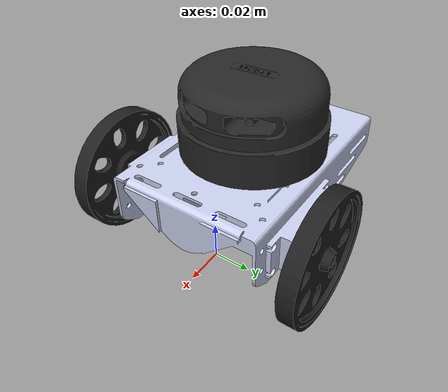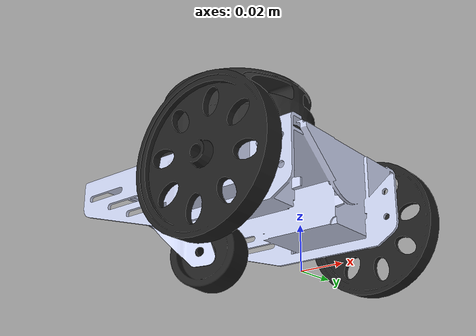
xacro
<?xml version="1.0"?>
<robot
  xmlns:xacro="http://www.ros.org/wiki/xacro"
  name="boe_robot">

  <!-- Các thông số chính của robot -->
  <xacro:property name="wheel_radius" value="0.03272"/>
  <xacro:property name="wheel_width" value="0.00975"/>
  <xacro:property name="wheel_separation" value="0.115"/>
  <xacro:property name="caster_wheel_radius" value="0.01805"/>
  <xacro:property name="caster_wheel_width" value="0.02135"/>

  <!-- Màu thân xe -->
  <material name="body_color">
    <color rgba="0.796 0.824 0.937 1.0"/>
  </material>

  <!-- Màu bánh xe -->
  <material name="wheel_color">
    <color rgba="0.12 0.12 0.12 1.0"/>
  </material>

  <!--
    base_footprint nằm trên mặt đất,
    ở gần tâm giữa hai bánh chủ động.
  -->
  <link name="base_footprint"/>

  <!--
    Dịch base_link so với tâm hai bánh:
    x = -0.03193 m
    y =  0.004294 m
    z =  0.03215 m
  -->
  <joint name="base_footprint_joint" type="fixed">
    <parent link="base_footprint"/>
    <child link="base_link"/>
    <origin
      xyz="-0.0319316266 0.0042939669 0.03215"
      rpy="0 0 0"/>
  </joint>

    <!-- Thân xe -->
  <link name="base_link">
    <!-- Hình dạng hiển thị -->
    <visual>
      <origin xyz="0 0 0" rpy="0 0 0"/>
      <geometry>
        <mesh
          filename="package://boe_robot_description/meshes/base_link.STL"/>
      </geometry>
      <material name="body_color"/>
    </visual>

    <!-- Hình dạng dùng để tính va chạm -->
    <collision>
      <origin
        xyz="-0.0018954 -0.0042940 0.0018238"
        rpy="0 0 0"/>
      <geometry>
        <box size="0.1209 0.1150 0.0335"/>
      </geometry>
    </collision>

    <!-- Khối lượng và mô-men quán tính -->
    <inertial>
      <origin
        xyz="0.0154452 -0.0042940 0.0038704"
        rpy="0 0 0"/>
      <mass value="0.0814944"/>
      <inertia
        ixx="2.7770132e-05"
        ixy="0.0"
        ixz="1.0575890e-06"
        iyy="4.2579467e-05"
        iyz="0.0"
        izz="6.3174700e-05"/>
    </inertial>
  </link>

  <!-- Bánh chủ động bên trái -->
  <link name="wheel_left_link">
    <visual>
      <origin
        xyz="0 0 0"
        rpy="1.5707963268 0 0"/>
      <geometry>
        <mesh filename="package://boe_robot_description/meshes/wheel_left_link.STL"/>
      </geometry>
      <material name="wheel_color"/>
    </visual>

    <collision>
      <origin
        xyz="0 0.002125 0"
        rpy="1.5707963268 0 0"/>
      <geometry>
        <cylinder
          radius="${wheel_radius}"
          length="${wheel_width}"/>
      </geometry>
    </collision>

    <inertial>
      <origin
        xyz="0 0.0014620 0"
        rpy="1.5707963268 0 0"/>
      <mass value="0.0130643"/>
      <inertia
        ixx="4.3289310e-06"
        ixy="0.0"
        ixz="0.0"
        iyy="4.3289308e-06"
        iyz="0.0"
        izz="8.5765717e-06"/>
    </inertial>
  </link>

  <joint name="wheel_left_joint" type="continuous">
    <parent link="base_link"/>
    <child link="wheel_left_link"/>
    <origin
      xyz="0.0329316266 0.0532060331 0.0005737626"
      rpy="0 0 0"/>
    <axis xyz="0 1 0"/>
    <limit effort="1.0" velocity="20.0"/>
  </joint>

  <!-- Bánh chủ động bên phải -->
  <link name="wheel_right_link">
    <visual>
      <origin
        xyz="0 0 0"
        rpy="-1.5707963268 0 0"/>
      <geometry>
        <mesh filename="package://boe_robot_description/meshes/wheel_right_link.STL"/>
      </geometry>
      <material name="wheel_color"/>
    </visual>

    <collision>
      <origin
        xyz="0 -0.002125 0"
        rpy="-1.5707963268 0 0"/>
      <geometry>
        <cylinder
          radius="${wheel_radius}"
          length="${wheel_width}"/>
      </geometry>
    </collision>

    <inertial>
      <origin
        xyz="0 -0.0014620 0"
        rpy="-1.5707963268 0 0"/>
      <mass value="0.0130643"/>
      <inertia
        ixx="4.3289310e-06"
        ixy="0.0"
        ixz="0.0"
        iyy="4.3289308e-06"
        iyz="0.0"
        izz="8.5765717e-06"/>
    </inertial>
  </link>

  <joint name="wheel_right_joint" type="continuous">
    <parent link="base_link"/>
    <child link="wheel_right_link"/>
    <origin
      xyz="0.0309316266 -0.0617939669 0.0005737626"
      rpy="0 0 0"/>
    <axis xyz="0 1 0"/>
    <limit effort="1.0" velocity="20.0"/>
  </joint>
  <!-- Cụm bánh caster                                       -->

  <!-- Đế caster gắn cố định với thân robot -->
  <link name="caster_base_link">
    <visual>
      <origin xyz="0 0 0" rpy="0 0 0"/>
      <geometry>
        <mesh
          filename="package://boe_robot_description/meshes/caster_base_link.STL"/>
      </geometry>
      <material name="body_color"/>
    </visual>

    <collision>
      <origin
        xyz="-0.0361715 0 -0.0059156"
        rpy="0 0 0"/>
      <geometry>
        <box size="0.02925 0.04230 0.00883"/>
      </geometry>
    </collision>

    <inertial>
      <origin
        xyz="-0.0361715 0 -0.0030658"
        rpy="0 0 0"/>
      <mass value="0.0030125"/>
      <inertia
        ixx="3.9104173e-07"
        ixy="0.0"
        ixz="0.0"
        iyy="2.0299201e-07"
        iyz="0.0"
        izz="5.8856957e-07"/>
    </inertial>
  </link>

  <joint name="caster_base_joint" type="fixed">
    <parent link="base_link"/>
    <child link="caster_base_link"/>
    <origin
      xyz="-0.0049954073 -0.0042939669 0.0185737626"
      rpy="0 0 0"/>
  </joint>

  <!-- Phần caster có thể tự xoay theo hướng chuyển động -->
  <link name="caster_rotation_link">
    <visual>
      <origin xyz="0 0 0" rpy="0 0 0"/>
      <geometry>
        <mesh
          filename="package://boe_robot_description/meshes/caster_rotation_link.STL"/>
      </geometry>
      <material name="body_color"/>
    </visual>

    <collision>
      <origin
        xyz="0.0075675 0.0003090 -0.0147200"
        rpy="0 0 0"/>
      <geometry>
        <box size="0.04273 0.02820 0.03036"/>
      </geometry>
    </collision>

    <inertial>
      <origin
        xyz="0.0080981 0.0017545 -0.0072399"
        rpy="0 0 0"/>
      <mass value="0.0011340"/>
      <inertia
        ixx="1.7627566e-07"
        ixy="-8.3344816e-09"
        ixz="3.7574602e-08"
        iyy="2.1288142e-07"
        iyz="8.1503549e-09"
        izz="2.2080115e-07"/>
    </inertial>
  </link>

  <!-- Khớp thụ động cho cả cụm caster đổi hướng quanh trục Z. -->
  <joint name="caster_rotation_joint" type="continuous">
    <parent link="caster_base_link"/>
    <child link="caster_rotation_link"/>
    <origin
      xyz="-0.0361714130 0 -0.0106540966"
      rpy="0 0 0"/>
    <axis xyz="0 0 1"/>
    <dynamics damping="0.02" friction="0.001"/>
    <limit effort="0.2" velocity="10.0"/>
  </joint>

  <!-- Bánh caster hiển thị; collision vật lý đơn giản nằm trong SDF. -->
  <link name="caster_wheel_link">
    <visual>
      <origin
        xyz="0 0 0"
        rpy="-1.5707963268 0 0"/>
      <geometry>
        <mesh
          filename="package://boe_robot_description/meshes/caster_wheel_link.STL"/>
      </geometry>
      <material name="wheel_color"/>
    </visual>

    <collision>
      <origin
        xyz="0 0 0"
        rpy="-1.5707963268 0 0"/>
      <geometry>
        <cylinder
          radius="${caster_wheel_radius}"
          length="${caster_wheel_width}"/>
      </geometry>
    </collision>

    <inertial>
      <origin
        xyz="-0.0000022 0.0000102 0"
        rpy="-1.5707963268 0 0"/>
      <mass value="0.0076789"/>
      <inertia
        ixx="8.3385020e-07"
        ixy="0.0"
        ixz="-1.2263852e-07"
        iyy="8.0727807e-07"
        iyz="0.0"
        izz="1.3732925e-06"/>
    </inertial>
  </link>

  <!-- Khớp thụ động cho bánh caster lăn quanh trục Y. -->
  <joint name="caster_wheel_joint" type="continuous">
    <parent link="caster_rotation_link"/>
    <child link="caster_wheel_link"/>
    <origin
      xyz="0.0179800159 0.0039088610 -0.0220196660"
      rpy="0 0 0"/>
    <axis xyz="0 1 0"/>
    <dynamics damping="0.005" friction="0.001"/>
    <limit effort="0.2" velocity="20.0"/>
  </joint>

  <!-- LiDAR 2D                                               -->

  <material name="lidar_color">
    <color rgba="0.15 0.15 0.15 1.0"/>
  </material>

  <!-- Phần thân của cảm biến LiDAR -->
  <link name="lidar_link">
    <visual>
      <origin xyz="0 0 0" rpy="0 0 0"/>
      <geometry>
        <mesh
          filename="package://boe_robot_description/meshes/lidar_link.STL"/>
      </geometry>
      <material name="lidar_color"/>
    </visual>

    <collision>
      <origin
        xyz="0.0044570 0.0002393 -0.0043482"
        rpy="0 0 0"/>
      <geometry>
        <cylinder radius="0.038" length="0.041"/>
      </geometry>
    </collision>

    <inertial>
      <origin
        xyz="0.0038634 0.0002219 -0.0055496"
        rpy="0 0 0"/>
      <mass value="0.1653828"/>
      <inertia
        ixx="7.8845557e-05"
        ixy="2.7219327e-07"
        ixz="2.1789506e-06"
        iyy="7.5209918e-05"
        iyz="1.6227741e-07"
        izz="1.0994675e-04"/>
    </inertial>
  </link>

  <!-- LiDAR được gắn cố định trên thân xe -->
  <joint name="lidar_joint" type="fixed">
    <parent link="base_link"/>
    <child link="lidar_link"/>
    <origin
      xyz="-0.0070723108 -0.0045653019 0.0434219487"
      rpy="0 0 0"/>
  </joint>
</robot>
